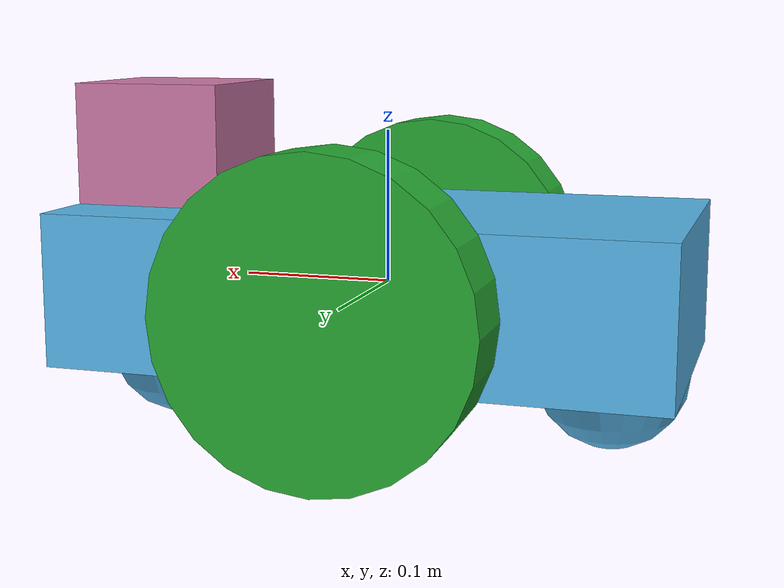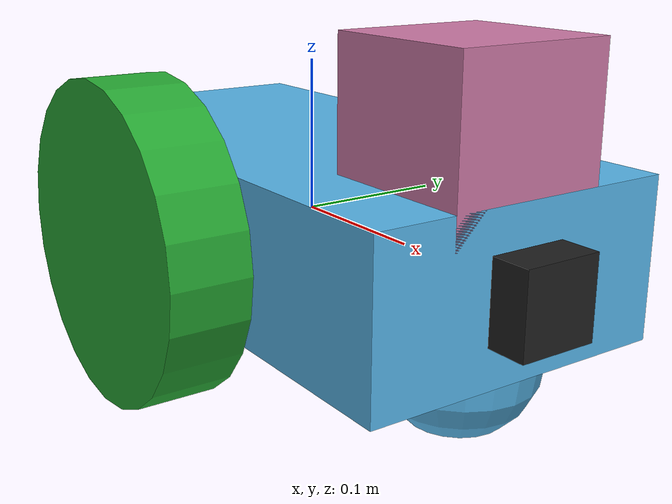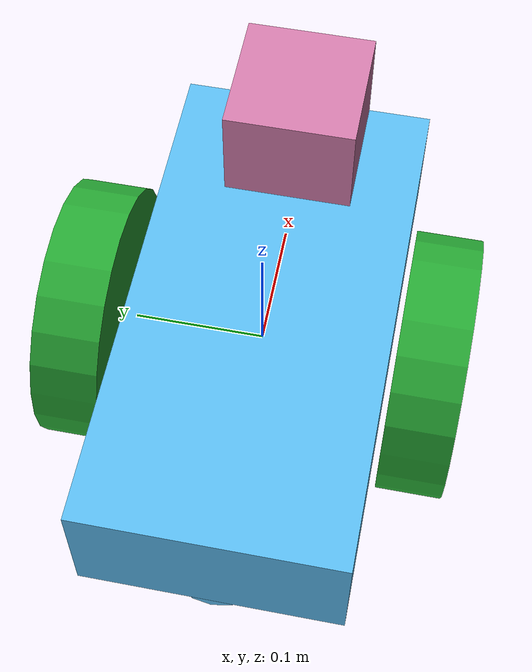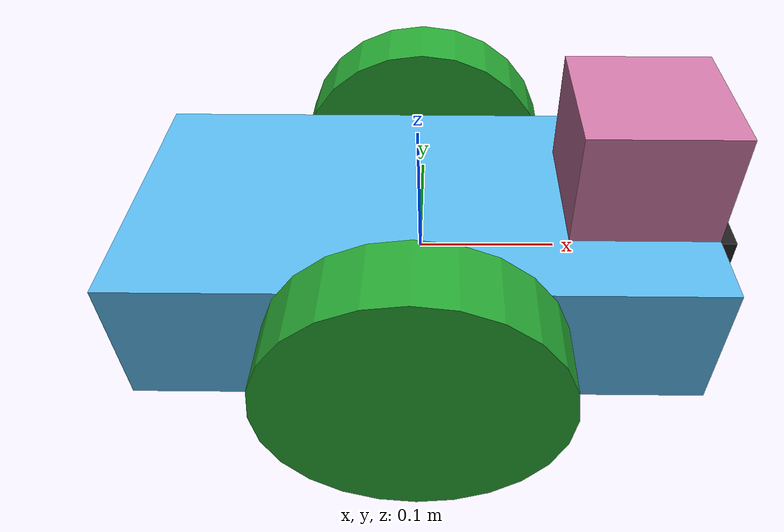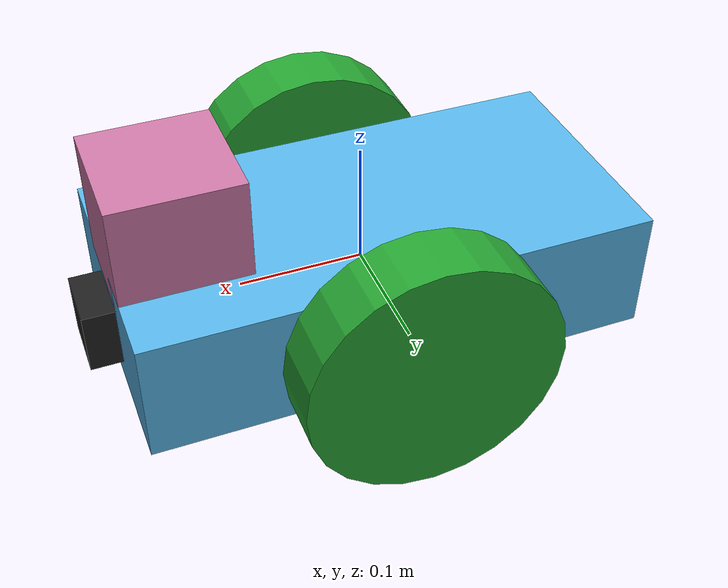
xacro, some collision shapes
<?xml version='1.0'?>

<robot name="my_robot" xmlns:xacro="http://www.ros.org/wiki/xacro">

  <link name="robot_footprint"></link>

<xacro:include filename="$(find my_robot)/urdf/my_robot.gazebo" />

  <joint name="robot_footprint_joint" type="fixed">
    <origin xyz="0 0 0" rpy="0 0 0" />
    <parent link="robot_footprint"/>
    <child link="chassis" />
  </joint>

  <link name='chassis'>
    <pose>0 0 0.1 0 0 0</pose>

    <inertial>
      <mass value="15.0"/>
      <origin xyz="0.0 0 0" rpy=" 0 0 0"/>
      <inertia
          ixx="0.1" ixy="0" ixz="0"
          iyy="0.1" iyz="0"
          izz="0.1"
      />
    </inertial>

    <collision name='collision'>
      <origin xyz="0 0 0" rpy=" 0 0 0"/>
      <geometry>
        <box size=".4 .2 .1"/>
      </geometry>
    </collision>

    <visual name='chassis_visual'>
      <origin xyz="0 0 0" rpy=" 0 0 0"/>
      <geometry>
        <box size=".4 .2 .1"/>
      </geometry>
    </visual>

    <collision name='back_caster_collision'>
      <origin xyz="-0.15 0 -0.05" rpy=" 0 0 0"/>
      <geometry>
        <sphere radius="0.0499"/>
      </geometry>
    </collision>

    <visual name='back_caster_visual'>
      <origin xyz="-0.15 0 -0.05" rpy=" 0 0 0"/>
      <geometry>
        <sphere radius="0.05"/>
      </geometry>
    </visual>

    <collision name='front_caster_collision'>
      <origin xyz="0.15 0 -0.05" rpy=" 0 0 0"/>
      <geometry>
        <sphere radius="0.0499"/>
      </geometry>
    </collision>

    <visual name='front_caster_visual'>
      <origin xyz="0.15 0 -0.05" rpy=" 0 0 0"/>
      <geometry>
        <sphere radius="0.05"/>
      </geometry>
    </visual>

  </link>

<link name='left_wheel'>

    <inertial>
      <mass value="5.0"/>
      <origin xyz="0.0 0 0" rpy="0 0 0"/>
      <inertia
          ixx="0.1" ixy="0" ixz="0"
          iyy="0.1" iyz="0"
          izz="0.1"
      />
    </inertial>

    <collision name='collision'>
      <origin xyz="0.0 0 0" rpy="0 1.5707 1.5707"/>
      <geometry>
        <cylinder radius="0.1" length="0.05"/>
      </geometry>
    </collision>

    <visual name='left_wheel_visual'>
      <origin xyz="0.0 0 0" rpy="0 1.5707 1.5707"/>
      <geometry>
        <cylinder radius="0.1" length="0.05"/>
      </geometry>
    </visual>
</link>

<link name='right_wheel'>

    <inertial>
      <mass value="5.0"/>
      <origin xyz="0.0 0 0" rpy="0 0 0"/>
      <inertia
          ixx="0.1" ixy="0" ixz="0"
          iyy="0.1" iyz="0"
          izz="0.1"
      />
    </inertial>

    <collision name='collision'>
      <origin xyz="0.0 0 0" rpy="0 1.5707 1.5707"/>
      <geometry>
        <cylinder radius="0.1" length="0.05"/>
      </geometry>
    </collision>

    <visual name='right_wheel_visual'>
      <origin xyz="0.0 0 0" rpy="0 1.5707 1.5707"/>
      <geometry>
        <cylinder radius="0.1" length="0.05"/>
      </geometry>
    </visual>

</link>

<gazebo reference="left_wheel">
    <material>Gazebo/Green</material>
</gazebo>

<gazebo reference="right_wheel">
    <material>Gazebo/Green</material>
</gazebo>

<joint type="continuous" name="left_wheel_hinge">
      <origin xyz="0 0.13 0" rpy="0 0 0"/>
      <child link="left_wheel"/>
      <parent link="chassis"/>
      <axis xyz="0 1 0" rpy="0 0 0"/>
      <limit effort="10000" velocity="1000"/>
      <dynamics damping="1.0" friction="1.0"/>
    </joint>

<joint type="continuous" name="right_wheel_hinge">
      <origin xyz="0 -0.13 0" rpy="0 0 0"/>
      <child link="right_wheel"/>
      <parent link="chassis"/>
      <axis xyz="0 1 0" rpy="0 0 0"/>
      <limit effort="10000" velocity="1000"/>
      <dynamics damping="1.0" friction="1.0"/>
    </joint>

<link name='camera'>

    <inertial>
      <mass value="0.1"/>
      <origin xyz="0.0 0 0" rpy="0 0 0"/>
      <box_inertia m="0.1" x="0.05" y="0.05" z="0.05"/>
      <inertia
          ixx="1e-6" ixy="0" ixz="0"
	  iyy="1e-6" iyz="0"
          izz="1e-6"
      />
    </inertial>

    <collision name='collision'>
      <origin xyz="0.0 0 0" rpy="0 0 0"/>
      <geometry>
        <box size="0.05 0.05 0.05"/>
      </geometry>
    </collision>

    <visual name='camera_visual'>
      <origin xyz="0.0 0 0" rpy="0 0 0"/>
      <geometry>
        <box size="0.05 0.05 0.05"/>
      </geometry>

    </visual>

</link>

<gazebo reference="camera">
    <material>Gazebo/Black</material>
</gazebo>

<joint name="camera_joint" type="fixed">
      <origin xyz="0.2 0 0" rpy="0 0 0"/>
      <child link="camera"/>
      <parent link="chassis"/>
      <axis xyz="0 1 0"/>
      <limit effort="10000" velocity="1000"/>
      <dynamics damping="1.0" friction="1.0"/>
    </joint>

  <joint name="camera_optical_joint" type="fixed">
    <origin xyz="0 0 0" rpy=" -1.5707 0 -1.5707"/>
    <parent link="camera"/>
    <child link="camera_link_optical"/>
  </joint>

  <link name="camera_link_optical">
  </link>

<link name='hokuyo'>

    <inertial>
      <mass value="1e-5"/>
      <origin xyz="0.0 0 0" rpy="0 0 0"/>
      <inertia
          ixx="1e-6" ixy="0" ixz="0" iyy="1e-6" iyz="0" izz="1e-6"
      />
    </inertial>

    <collision>
      <origin xyz="0.0 0 0" rpy="0 0 0"/>
      <geometry>
        <box size="0.1 0.1 0.1"/>
      </geometry>
    </collision>

    <visual>
      <origin xyz="0.0 0 0" rpy="0 0 0"/>
      <geometry>
        <mesh filename="package://my_robot/meshes/hokuyo.dae"/>
      </geometry>
    </visual>

</link>

<joint name="hokuyo_joint" type="fixed">
      <origin xyz="0.15 0 0.08" rpy="0 0 0"/>
      <child link="hokuyo"/>
      <parent link="chassis"/>
      <axis xyz="0 1 0"/>
    </joint>

</robot>
